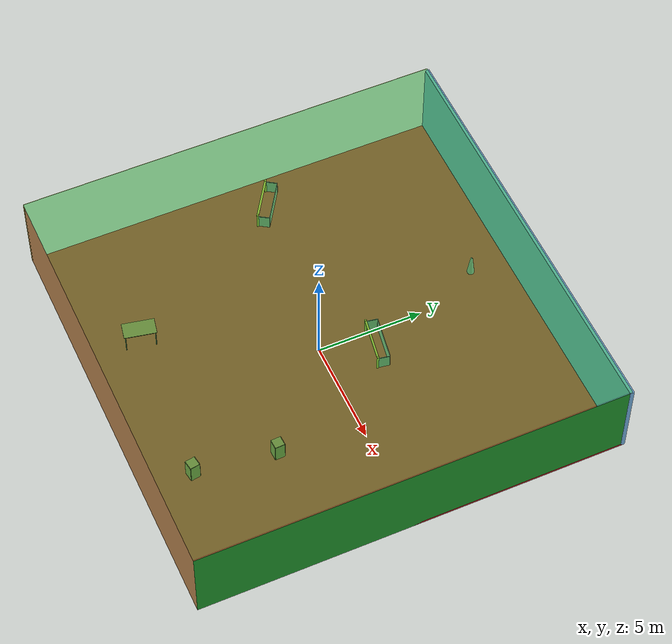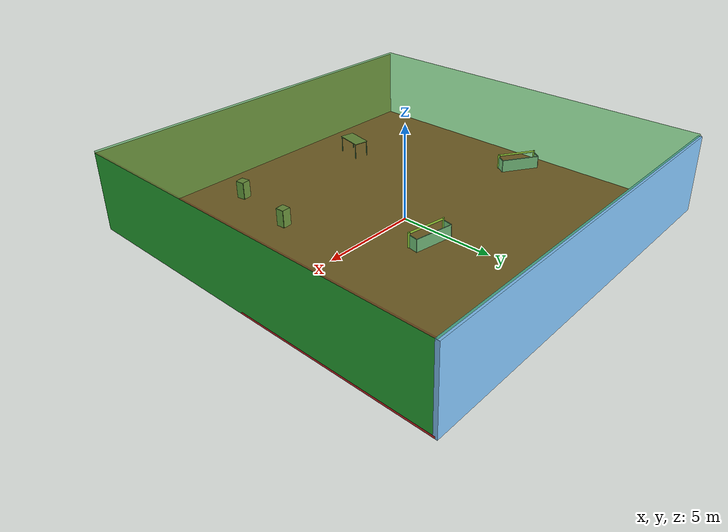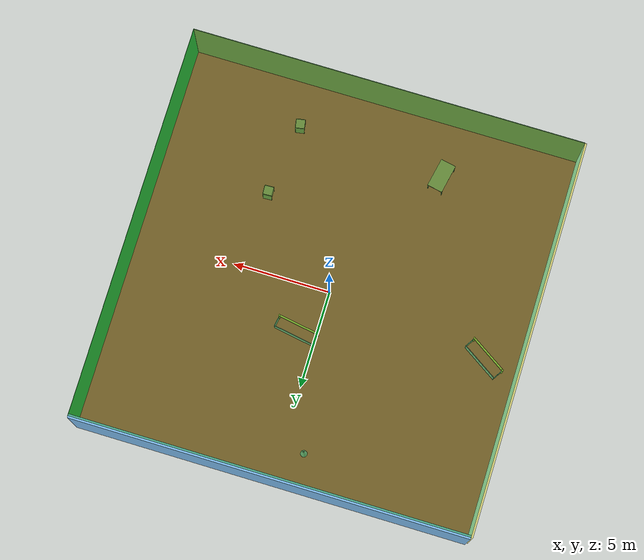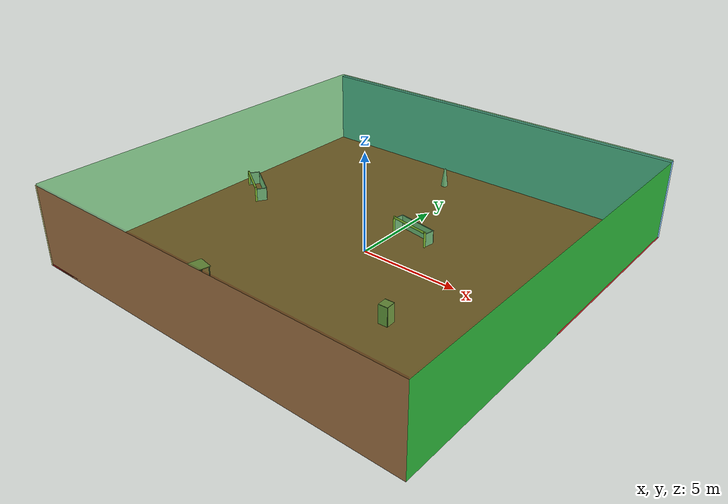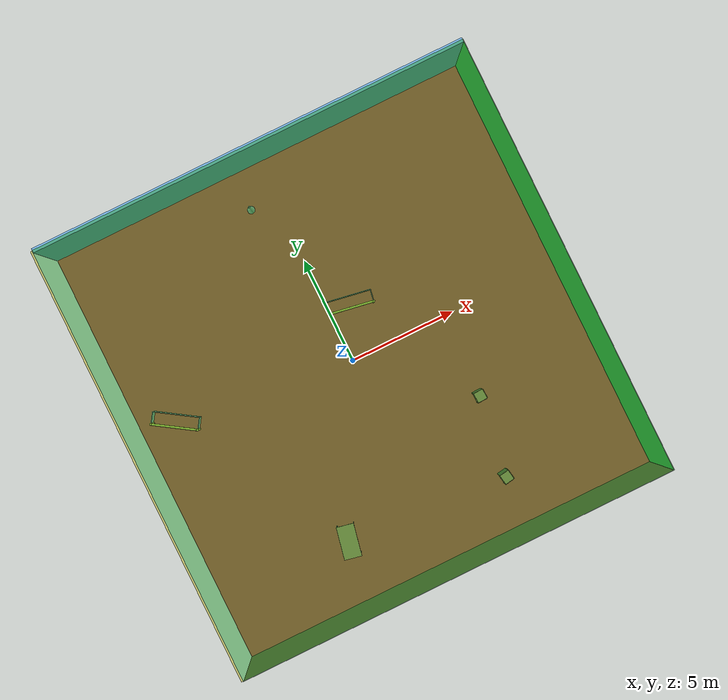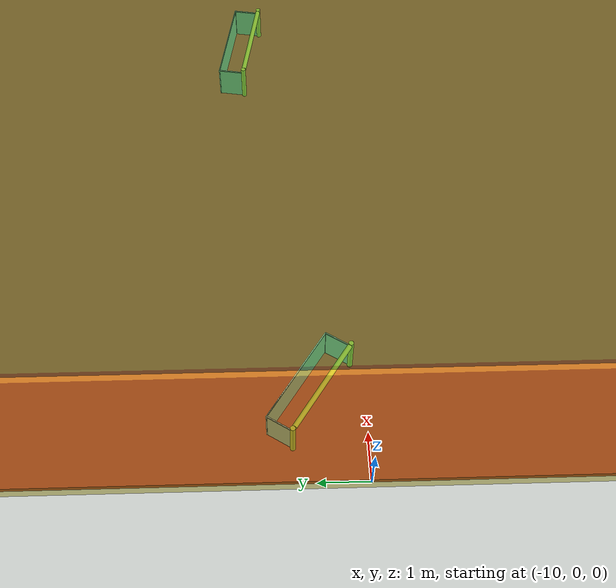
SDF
<sdf version="1.4">
 <world name="default">
  <physics type="ode">
   <max_step_size>0.001</max_step_size>
   <real_time_factor>1</real_time_factor>
   <real_time_update_rate>1000</real_time_update_rate>
   <gravity>0 0 -9.8</gravity>
  </physics>
  <scene><ambient>0.4 0.4 0.4 1</ambient><background>0.7 0.7 0.7 1</background><shadows>1</shadows></scene>
  <model name="Surrounding">
   <static>1</static>
   <link name="Ceiling">
    <collision name="Ceiling_Collision"><geometry><box><size>20 20 0.1</size></box></geometry></collision>
    <visual name="Ceiling_Visual">
     <geometry><box><size>20 20 0.1</size></box></geometry>
     <material>
      <script><uri>file://media/materials/scripts/gazebo.material</uri><name>Gazebo/GreenTransparent</name></script>
     </material>
    </visual>
    <pose>0 0 4.05 0 0 0</pose>
   </link>
   <link name="Wall_South">
    <collision name="Wall_South_Collision">
     <geometry><box><size>20 0 4</size></box></geometry>
     <pose>0 0 2 0 -0 0</pose>
    </collision>
    <visual name="Wall_South_Visual">
     <pose>0 0 2 0 -0 0</pose>
     <geometry><box><size>20 0 4</size></box></geometry>
     <material>
      <script><uri>file://media/materials/scripts/gazebo.material</uri><name>Gazebo/WoodPallet</name></script>
     </material>
    </visual>
    <velocity_decay><linear>0</linear><angular>0</angular></velocity_decay>
    <pose>0 -10 0 0 -0 0</pose>
   </link>
   <link name="Wall_East">
    <collision name="Wall_21_Collision">
     <geometry><box><size>20 0 4</size></box></geometry>
     <pose>0 0 2 0 -0 0</pose>
    </collision>
    <visual name="Wall_21_Visual">
     <pose>0 0 2 0 -0 0</pose>
     <geometry><box><size>20 0 4</size></box></geometry>
     <material>
      <script><uri>file://media/materials/scripts/gazebo.material</uri><name>Gazebo/Green</name></script>
     </material>
    </visual>
    <velocity_decay><linear>0</linear><angular>0</angular></velocity_decay>
    <pose>10 0 0 0 -0 1.5708</pose>
   </link>
   <link name="Wall_North">
    <collision name="Wall_22_Collision">
     <geometry><box><size>20 0.2 4</size></box></geometry>
     <pose>0 0 2 0 -0 0</pose>
    </collision>
    <visual name="Wall_22_Visual">
     <pose>0 0 2 0 -0 0</pose>
     <geometry><box><size>20 0.2 4</size></box></geometry>
     <material>
      <script><uri>file://media/materials/scripts/gazebo.material</uri><name>Gazebo/SkyBlue</name></script>
     </material>
    </visual>
    <velocity_decay><linear>0</linear><angular>0</angular></velocity_decay>
    <pose>0 10 0 0 -0 0</pose>
   </link>
   <link name="Wall_West">
    <collision name="Wall_23_Collision">
     <geometry><box><size>20 0.2 4</size></box></geometry>
     <pose>0 0 2 0 -0 0</pose>
    </collision>
    <visual name="Wall_23_Visual">
     <pose>0 0 2 0 -0 0</pose>
     <geometry><box><size>20 0.2 4</size></box></geometry>
     <material>
      <script>
       <uri>file://media/materials/scripts/gazebo.material</uri>
       <name>Gazebo/YellowTransparent</name>
      </script>
     </material>
    </visual>
    <velocity_decay><linear>0</linear><angular>0</angular></velocity_decay>
    <pose>-10 0 0 0 0 -1.5708</pose>
   </link>
   <link name="Ground_link">
    <collision name="collision">
     <pose>0 0 .05 0 -0 0</pose>
     <geometry><box><size>20 20 0.1</size></box></geometry>
    </collision>
    <visual name="visual">
     <pose>0 0 .05 0 -0 0</pose>
     <geometry><box><size>20 20 0.1</size></box></geometry>
     <material>
      <script><uri>file://media/materials/scripts/gazebo.material</uri><name>Gazebo/RedBright</name></script>
     </material>
    </visual>
   </link>
   <static>1</static>
  </model>
  <spherical_coordinates>
   <surface_model>EARTH_WGS84</surface_model>
   <latitude_deg>0</latitude_deg>
   <longitude_deg>0</longitude_deg>
   <elevation>0</elevation>
   <heading_deg>0</heading_deg>
  </spherical_coordinates>
  <light name="lightball_0" type="diffuse">
   <diffuse>0.8 0.8 0.8 1</diffuse>
   <specular>0.2 0.2 0.2 1</specular>
   <attenuation>
    <range>100</range>
    <constant>0.7</constant>
    <linear>0.01</linear>
    <quadratic>0.001</quadratic>
   </attenuation>
   <direction>-0.5 0.1 -0.9</direction>
   <pose>-0.537206602363 -7.08659247337 2.21459628962 0 0 0</pose>
  </light>
  <light name="lightball_1" type="diffuse">
   <diffuse>0.8 0.8 0.8 1</diffuse>
   <specular>0.2 0.2 0.2 1</specular>
   <attenuation>
    <range>100</range>
    <constant>0.7</constant>
    <linear>0.01</linear>
    <quadratic>0.001</quadratic>
   </attenuation>
   <direction>-0.5 0.1 -0.9</direction>
   <pose>3.33922402809 -1.99348513153 3.83499076056 0 0 0</pose>
  </light>
  <light name="lightball_2" type="diffuse">
   <diffuse>0.8 0.8 0.8 1</diffuse>
   <specular>0.2 0.2 0.2 1</specular>
   <attenuation>
    <range>100</range>
    <constant>0.7</constant>
    <linear>0.01</linear>
    <quadratic>0.001</quadratic>
   </attenuation>
   <direction>-0.5 0.1 -0.9</direction>
   <pose>7.88767839683 5.75691192451 2.69982096255 0 0 0</pose>
  </light>
  <light name="lightball_3" type="diffuse">
   <diffuse>0.8 0.8 0.8 1</diffuse>
   <specular>0.2 0.2 0.2 1</specular>
   <attenuation>
    <range>100</range>
    <constant>0.7</constant>
    <linear>0.01</linear>
    <quadratic>0.001</quadratic>
   </attenuation>
   <direction>-0.5 0.1 -0.9</direction>
   <pose>-0.943358788226 -5.79763325279 1.1710610298 0 0 0</pose>
  </light>
  <light name="lightball_4" type="diffuse">
   <diffuse>0.8 0.8 0.8 1</diffuse>
   <specular>0.2 0.2 0.2 1</specular>
   <attenuation>
    <range>100</range>
    <constant>0.7</constant>
    <linear>0.01</linear>
    <quadratic>0.001</quadratic>
   </attenuation>
   <direction>-0.5 0.1 -0.9</direction>
   <pose>-6.93464790181 -0.354223829538 3.5670888683 0 0 0</pose>
  </light>
  <light name="lightball_5" type="diffuse">
   <diffuse>0.8 0.8 0.8 1</diffuse>
   <specular>0.2 0.2 0.2 1</specular>
   <attenuation>
    <range>100</range>
    <constant>0.7</constant>
    <linear>0.01</linear>
    <quadratic>0.001</quadratic>
   </attenuation>
   <direction>-0.5 0.1 -0.9</direction>
   <pose>-7.21348366202 -3.85263945008 3.01078329561 0 0 0</pose>
  </light>
  <light name="lightball_6" type="diffuse">
   <diffuse>0.8 0.8 0.8 1</diffuse>
   <specular>0.2 0.2 0.2 1</specular>
   <attenuation>
    <range>100</range>
    <constant>0.7</constant>
    <linear>0.01</linear>
    <quadratic>0.001</quadratic>
   </attenuation>
   <direction>-0.5 0.1 -0.9</direction>
   <pose>-3.57602224324 7.18644093921 2.80664759826 0 0 0</pose>
  </light>
  <light name="lightball_7" type="diffuse">
   <diffuse>0.8 0.8 0.8 1</diffuse>
   <specular>0.2 0.2 0.2 1</specular>
   <attenuation>
    <range>100</range>
    <constant>0.7</constant>
    <linear>0.01</linear>
    <quadratic>0.001</quadratic>
   </attenuation>
   <direction>-0.5 0.1 -0.9</direction>
   <pose>-2.80938606906 -5.13215075665 2.41701369356 0 0 0</pose>
  </light>
  <light name="lightball_8" type="diffuse">
   <diffuse>0.8 0.8 0.8 1</diffuse>
   <specular>0.2 0.2 0.2 1</specular>
   <attenuation>
    <range>100</range>
    <constant>0.7</constant>
    <linear>0.01</linear>
    <quadratic>0.001</quadratic>
   </attenuation>
   <direction>-0.5 0.1 -0.9</direction>
   <pose>1.77517593877 6.81663380257 3.35905442891 0 0 0</pose>
  </light>
  <light name="lightball_9" type="diffuse">
   <diffuse>0.8 0.8 0.8 1</diffuse>
   <specular>0.2 0.2 0.2 1</specular>
   <attenuation>
    <range>100</range>
    <constant>0.7</constant>
    <linear>0.01</linear>
    <quadratic>0.001</quadratic>
   </attenuation>
   <direction>-0.5 0.1 -0.9</direction>
   <pose>4.21742612041 9.60406086187 0.602864964238 0 0 0</pose>
  </light>
  <light name="lightball_10" type="diffuse">
   <diffuse>0.8 0.8 0.8 1</diffuse>
   <specular>0.2 0.2 0.2 1</specular>
   <attenuation>
    <range>100</range>
    <constant>0.7</constant>
    <linear>0.01</linear>
    <quadratic>0.001</quadratic>
   </attenuation>
   <direction>-0.5 0.1 -0.9</direction>
   <pose>6.40971577179 4.54422495255 1.47169316605 0 0 0</pose>
  </light>
  <light name="lightball_11" type="diffuse">
   <diffuse>0.8 0.8 0.8 1</diffuse>
   <specular>0.2 0.2 0.2 1</specular>
   <attenuation>
    <range>100</range>
    <constant>0.7</constant>
    <linear>0.01</linear>
    <quadratic>0.001</quadratic>
   </attenuation>
   <direction>-0.5 0.1 -0.9</direction>
   <pose>1.1815553924 -3.90024037443 1.25433715814 0 0 0</pose>
  </light>
  <include>
   <uri>model://robocup_3Dsim_goal</uri>
   <pose>-8.45791685264 0.841345312243 0 0 0 0.993983318475</pose>
  </include>
  <include><uri>model://table</uri><pose>-3.70918373016 -7.14104095 0 0 0 1.36962197549</pose></include>
  <include>
   <uri>model://construction_cone</uri>
   <pose>-1.13483795887 8.11634107054 0 0 0 2.51703902663</pose>
  </include>
  <include>
   <uri>model://robocup_3Dsim_goal</uri>
   <pose>0.958718169948 2.13548859117 0 0 0 1.4024217299</pose>
  </include>
  <include><uri>model://cabinet</uri><pose>3.83880035461 -7.66306582048 0 0 0 0.158355267926</pose></include>
  <include><uri>model://cabinet</uri><pose>4.37053838468 -3.90605818987 0 0 0 0.0414609471316</pose></include>
 </world>
</sdf>

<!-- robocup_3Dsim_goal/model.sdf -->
<sdf version="1.5">
  <model name="robocup_3d_goal">
    <static>true</static>
    <link name="left_post">
      <pose>0 1.05 0.45 0 0 0</pose>
      <collision name="collision">
        <geometry>
          <cylinder>
            <radius>0.05</radius>
            <length>0.9</length>
          </cylinder>
        </geometry>
      </collision>
      <visual name="visual">
        <geometry>
          <cylinder>
            <radius>0.05</radius>
            <length>0.9</length>
          </cylinder>
        </geometry>
        <material>
          <script>
            <uri>file://media/materials/scripts/gazebo.material</uri>
            <name>Gazebo/ZincYellow</name>
          </script>
        </material>
      </visual>
    </link>
    <link name="left_support_horiz_lower">
      <pose>0.30 1.05 0.01 0 0 0</pose>
      <collision name="collision">
        <geometry>
          <box>
            <size>0.50 0.02 0.02</size>
          </box>
        </geometry>
      </collision>
      <visual name="visual">
        <geometry>
          <box>
            <size>0.50 0.02 0.02</size>
          </box>
        </geometry>
        <material>
          <script>
            <uri>file://media/materials/scripts/gazebo.material</uri>
            <name>Gazebo/White</name>
          </script>
        </material>
      </visual>
    </link>
    <link name="left_support_horiz_upper">
      <pose>0.30 1.05 0.79 0 0 0</pose>
      <collision name="collision">
        <geometry>
          <box>
            <size>0.50 0.02 0.02</size>
          </box>
        </geometry>
      </collision>
      <visual name="visual">
        <geometry>
          <box>
            <size>0.50 0.02 0.02</size>
          </box>
        </geometry>
        <material>
          <script>
            <uri>file://media/materials/scripts/gazebo.material</uri>
            <name>Gazebo/White</name>
          </script>
        </material>
      </visual>
    </link>
    <link name="left_support_vertical">
      <pose>0.56 1.05 0.4 0 1.5708 0</pose>
      <collision name="collision">
        <geometry>
          <box>
            <size>0.80 0.02 0.02</size>
          </box>
        </geometry>
      </collision>
      <visual name="visual">
        <geometry>
          <box>
            <size>0.80 0.02 0.02</size>
          </box>
        </geometry>
        <material>
          <script>
            <uri>file://media/materials/scripts/gazebo.material</uri>
            <name>Gazebo/White</name>
          </script>
        </material>
      </visual>
    </link>
    <link name="right_support_horiz_lower">
      <pose>0.30 -1.05 0.01 0 0 0</pose>
      <collision name="collision">
        <geometry>
          <box>
            <size>0.50 0.02 0.02</size>
          </box>
        </geometry>
      </collision>
      <visual name="visual">
        <geometry>
          <box>
            <size>0.50 0.02 0.02</size>
          </box>
        </geometry>
        <material>
          <script>
            <uri>file://media/materials/scripts/gazebo.material</uri>
            <name>Gazebo/White</name>
          </script>
        </material>
      </visual>
    </link>
    <link name="right_support_horiz_upper">
      <pose>0.30 -1.05 0.79 0 0 0</pose>
      <collision name="collision">
        <geometry>
          <box>
            <size>0.50 0.02 0.02</size>
          </box>
        </geometry>
      </collision>
      <visual name="visual">
        <geometry>
          <box>
            <size>0.50 0.02 0.02</size>
          </box>
        </geometry>
        <material>
          <script>
            <uri>file://media/materials/scripts/gazebo.material</uri>
            <name>Gazebo/White</name>
          </script>
        </material>
      </visual>
    </link>
    <link name="right_support_vertical">
      <pose>0.56 -1.05 0.4 0 1.5708 0</pose>
      <collision name="collision">
        <geometry>
          <box>
            <size>0.80 0.02 0.02</size>
          </box>
        </geometry>
      </collision>
      <visual name="visual">
        <geometry>
          <box>
            <size>0.80 0.02 0.02</size>
          </box>
        </geometry>
        <material>
          <script>
            <uri>file://media/materials/scripts/gazebo.material</uri>
            <name>Gazebo/White</name>
          </script>
        </material>
      </visual>
    </link>
    <link name="center_support_horiz_lower">
      <pose>0.56 0 0.01 0 1.5708 0</pose>
      <collision name="collision">
        <geometry>
          <box>
            <size>0.02 2.08 0.02</size>
          </box>
        </geometry>
      </collision>
      <visual name="visual">
        <geometry>
          <box>
            <size>0.02 2.08 0.02</size>
          </box>
        </geometry>
        <material>
          <script>
            <uri>file://media/materials/scripts/gazebo.material</uri>
            <name>Gazebo/White</name>
          </script>
        </material>
      </visual>
    </link>
    <link name="center_support_horiz_upper">
      <pose>0.56 0 0.79 0 1.5708 0</pose>
      <collision name="collision">
        <geometry>
          <box>
            <size>0.02 2.08 0.02</size>
          </box>
        </geometry>
      </collision>
      <visual name="visual">
        <geometry>
          <box>
            <size>0.02 2.08 0.02</size>
          </box>
        </geometry>
        <material>
          <script>
            <uri>file://media/materials/scripts/gazebo.material</uri>
            <name>Gazebo/White</name>
          </script>
        </material>
      </visual>
    </link>
    <link name="right_post">
      <pose>0 -1.05 0.45 0 0 0</pose>
      <collision name="collision">
        <geometry>
          <cylinder>
            <radius>0.05</radius>
            <length>0.9</length>
          </cylinder>
        </geometry>
      </collision>
      <visual name="visual">
        <geometry>
          <cylinder>
            <radius>0.05</radius>
            <length>0.9</length>
          </cylinder>
        </geometry>
        <material>
          <script>
            <uri>file://media/materials/scripts/gazebo.material</uri>
            <name>Gazebo/ZincYellow</name>
          </script>
        </material>
      </visual>
    </link>
    <link name="crossbar">
      <pose>0 0 0.85 1.57 1.57 0</pose>
      <collision name="collision">
        <geometry>
          <cylinder>
            <radius>0.05</radius>
            <length>2.0</length>
          </cylinder>
        </geometry>
      </collision>
      <visual name="visual">
        <geometry>
          <cylinder>
            <radius>0.05</radius>
            <length>2.0</length>
          </cylinder>
        </geometry>
        <material>
          <script>
            <uri>file://media/materials/scripts/gazebo.material</uri>
            <name>Gazebo/ZincYellow</name>
          </script>
        </material>
      </visual>
    </link>
    <link name="center_net">
      <pose>0.56 0 0.40 0 0 0</pose>
      <collision name="collision">
        <geometry>
          <box>
            <size>0.01 2.1 0.80</size>
          </box>
        </geometry>
      </collision>
      <visual name="visual">
        <geometry>
          <box>
            <size>0.01 2.1 0.80</size>
          </box>
        </geometry>
        <material>
          <script>
            <uri>model://../model_source/models/robocup09_spl_field/materials/scripts/</uri>
            <uri>model://../model_source/models/robocup09_spl_field/materials/textures/</uri>
            <name>RoboCup/Net</name>
          </script>
        </material>
      </visual>
    </link>
    <link name="left_net">
      <pose>0.30 1.05 0.40 0 0 0</pose>
      <collision name="collision">
        <geometry>
          <box>
            <size>0.50 0.01 0.76</size>
          </box>
        </geometry>
      </collision>
      <visual name="visual">
        <geometry>
          <box>
            <size>0.50 0.01 0.76</size>
          </box>
        </geometry>
        <material>
          <script>
            <uri>model://../model_source/models/robocup09_spl_field/materials/scripts/</uri>
            <uri>model://../model_source/models/robocup09_spl_field/materials/textures/</uri>
            <name>RoboCup/Net</name>
          </script>
        </material>
      </visual>
    </link>
    <link name="right_net">
      <pose>0.30 -1.05 0.40 0 0 0</pose>
      <collision name="collision">
        <geometry>
          <box>
            <size>0.50 0.01 0.76</size>
          </box>
        </geometry>
      </collision>
      <visual name="visual">
        <geometry>
          <box>
            <size>0.50 0.01 0.76</size>
          </box>
        </geometry>
        <material>
          <script>
            <uri>model://../model_source/models/robocup09_spl_field/materials/scripts/</uri>
            <uri>model://../model_source/models/robocup09_spl_field/materials/textures/</uri>
            <name>RoboCup/Net</name>
          </script>
        </material>
      </visual>
    </link>
  </model>
</sdf>

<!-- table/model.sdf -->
<sdf version="1.5">
  <model name="table">
    <static>true</static>
    <link name="link">
      <collision name="surface">
        <pose>0 0 1.0 0 0 0</pose>
        <geometry>
          <box>
            <size>1.5 0.8 0.03</size>
          </box>
        </geometry>
        <surface>
          <friction>
            <ode>
              <mu>0.6</mu>
              <mu2>0.6</mu2>
            </ode>
          </friction>
        </surface>
      </collision>
      <visual name="visual1">
        <pose>0 0 1.0 0 0 0</pose>
        <geometry>
          <box>
            <size>1.5 0.8 0.03</size>
          </box>
        </geometry>
        <material>
          <script>
            <uri>model://media/materials/scripts/gazebo.material</uri>
            <name>Gazebo/Wood</name>
          </script>
        </material>
      </visual>
      <collision name="front_left_leg">
        <pose>0.68 0.38 0.5 0 0 0</pose>
        <geometry>
          <cylinder>
            <radius>0.02</radius>
            <length>1.0</length>
          </cylinder>
        </geometry>
      </collision>
      <visual name="front_left_leg">
        <pose>0.68 0.38 0.5 0 0 0</pose>
        <geometry>
          <cylinder>
            <radius>0.02</radius>
            <length>1.0</length>
          </cylinder>
        </geometry>
        <material>
          <script>
            <uri>model://media/materials/scripts/gazebo.material</uri>
            <name>Gazebo/Grey</name>
          </script>
        </material>
      </visual>
      <collision name="front_right_leg">
        <pose>0.68 -0.38 0.5 0 0 0</pose>
        <geometry>
          <cylinder>
            <radius>0.02</radius>
            <length>1.0</length>
          </cylinder>
        </geometry>
      </collision>
      <visual name="front_right_leg">
        <pose>0.68 -0.38 0.5 0 0 0</pose>
        <geometry>
          <cylinder>
            <radius>0.02</radius>
            <length>1.0</length>
          </cylinder>
        </geometry>
        <material>
          <script>
            <uri>model://media/materials/scripts/gazebo.material</uri>
            <name>Gazebo/Grey</name>
          </script>
        </material>
      </visual>
      <collision name="back_right_leg">
        <pose>-0.68 -0.38 0.5 0 0 0</pose>
        <geometry>
          <cylinder>
            <radius>0.02</radius>
            <length>1.0</length>
          </cylinder>
        </geometry>
      </collision>
      <visual name="back_right_leg">
        <pose>-0.68 -0.38 0.5 0 0 0</pose>
        <geometry>
          <cylinder>
            <radius>0.02</radius>
            <length>1.0</length>
          </cylinder>
        </geometry>
        <material>
          <script>
            <uri>model://media/materials/scripts/gazebo.material</uri>
            <name>Gazebo/Grey</name>
          </script>
        </material>
      </visual>
      <collision name="back_left_leg">
        <pose>-0.68 0.38 0.5 0 0 0</pose>
        <geometry>
          <cylinder>
            <radius>0.02</radius>
            <length>1.0</length>
          </cylinder>
        </geometry>
      </collision>
      <visual name="back_left_leg">
        <pose>-0.68 0.38 0.5 0 0 0</pose>
        <geometry>
          <cylinder>
            <radius>0.02</radius>
            <length>1.0</length>
          </cylinder>
        </geometry>
        <material>
          <script>
            <uri>model://media/materials/scripts/gazebo.material</uri>
            <name>Gazebo/Grey</name>
          </script>
        </material>
      </visual>
    </link>
  </model>
</sdf>

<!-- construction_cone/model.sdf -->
<sdf version="1.5">
  <model name="Construction Cone">
    <link name="link">
      <collision name="collision">
        <geometry>
          <mesh>
            <scale>10 10 10</scale>
            <uri>file://isr-testbed/construction_cone/meshes/construction_cone.dae</uri>
          </mesh>
        </geometry>
      </collision>
      <visual name="visual">
        <geometry>
          <mesh>
            <scale>10 10 10</scale>
            <uri>file://isr-testbed/construction_cone/meshes/construction_cone.dae</uri>
          </mesh>
        </geometry>
      </visual>
    </link>
  </model>
</sdf>

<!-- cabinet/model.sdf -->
<sdf version="1.5">
  <model name="cabinet">
    <static>true</static>
    <link name="cabinet_bottom_plate">
      <inertial>
        <pose>0 0 -1 0 0 0</pose>
        <inertia>
          <ixx>2.050000</ixx>
          <ixy>0</ixy>
          <ixz>0</ixz>
          <iyy>2.050000</iyy>
          <iyz>0</iyz>
          <izz>2.050000</izz>
        </inertia>
        <mass>25.000000</mass>
      </inertial>
      <collision name="cabinet_bottom_plate_geom">
        <pose>0 0 0.010000 0 0 0</pose>
        <geometry>
          <box>
            <size>0.450000 0.450000 0.020000</size>
          </box>
        </geometry>
      </collision>
      <visual name="cabinet_bottom_plate_geom_visual">
        <pose>0 0 0.010000 0 0 0</pose>
        <geometry>
          <box>
            <size>0.450000 0.450000 0.020000</size>
          </box>
        </geometry>
        <material>
          <script>
            <uri>model://media/materials/scripts/gazebo.material</uri>
            <name>Gazebo/Wood</name>
          </script>
        </material>
      </visual>
      <collision name="cabinet_bottom_plate_geom_cabinet_back_plate">
        <pose>0.235000 0 0.510000 0 0 0</pose>
        <geometry>
          <box>
            <size>0.020000 0.450000 1.020000</size>
          </box>
        </geometry>
      </collision>
      <visual name="cabinet_bottom_plate_geom_cabinet_back_plate_visual">
        <pose>0.235000 0 0.510000 0 0 0</pose>
        <geometry>
          <box>
            <size>0.020000 0.450000 1.020000</size>
          </box>
        </geometry>
        <material>
          <script>
            <uri>model://media/materials/scripts/gazebo.material</uri>
            <name>Gazebo/Wood</name>
          </script>
        </material>
      </visual>
      <collision name="cabinet_bottom_plate_geom_cabinet_left_plate">
        <pose>0 0.235000 0.510000 0 0 0</pose>
        <geometry>
          <box>
            <size>0.450000 0.020000 1.020000</size>
          </box>
        </geometry>
      </collision>
      <visual name="cabinet_bottom_plate_geom_cabinet_left_plate_visual">
        <pose>0 0.235000 0.510000 0 0 0</pose>
        <geometry>
          <box>
            <size>0.450000 0.020000 1.020000</size>
          </box>
        </geometry>
        <material>
          <script>
            <uri>model://media/materials/scripts/gazebo.material</uri>
            <name>Gazebo/Wood</name>
          </script>
        </material>
      </visual>
      <collision name="cabinet_bottom_plate_geom_cabinet_middle_plate">
        <pose>0 0 0.510000 0 0 0</pose>
        <geometry>
          <box>
            <size>0.450000 0.450000 0.020000</size>
          </box>
        </geometry>
      </collision>
      <visual name="cabinet_bottom_plate_geom_cabinet_middle_plate_visual">
        <pose>0 0 0.510000 0 0 0</pose>
        <geometry>
          <box>
            <size>0.450000 0.450000 0.020000</size>
          </box>
        </geometry>
        <material>
          <script>
            <uri>model://media/materials/scripts/gazebo.material</uri>
            <name>Gazebo/Wood</name>
          </script>
        </material>
      </visual>
      <collision name="cabinet_bottom_plate_geom_cabinet_right_plate">
        <pose>0 -0.235000 0.510000 0 0 0</pose>
        <geometry>
          <box>
            <size>0.450000 0.020000 1.020000</size>
          </box>
        </geometry>
      </collision>
      <visual name="cabinet_bottom_plate_geom_cabinet_right_plate_visual">
        <pose>0 -0.235000 0.510000 0 0 0</pose>
        <geometry>
          <box>
            <size>0.450000 0.020000 1.020000</size>
          </box>
        </geometry>
        <material>
          <script>
            <uri>model://media/materials/scripts/gazebo.material</uri>
            <name>Gazebo/Wood</name>
          </script>
        </material>
      </visual>
      <collision name="cabinet_bottom_plate_geom_cabinet_top_plate">
        <pose>0 0 1.010000 0 0 0</pose>
        <geometry>
          <box>
            <size>0.450000 0.450000 0.020000</size>
          </box>
        </geometry>
      </collision>
      <visual name="cabinet_bottom_plate_geom_cabinet_top_plate_visual">
        <pose>0 0 1.010000 0 0 0</pose>
        <geometry>
          <box>
            <size>0.450000 0.450000 0.020000</size>
          </box>
        </geometry>
        <material>
          <script>
            <uri>model://media/materials/scripts/gazebo.material</uri>
            <name>Gazebo/Wood</name>
          </script>
        </material>
      </visual>
    </link>
  </model>
</sdf>
